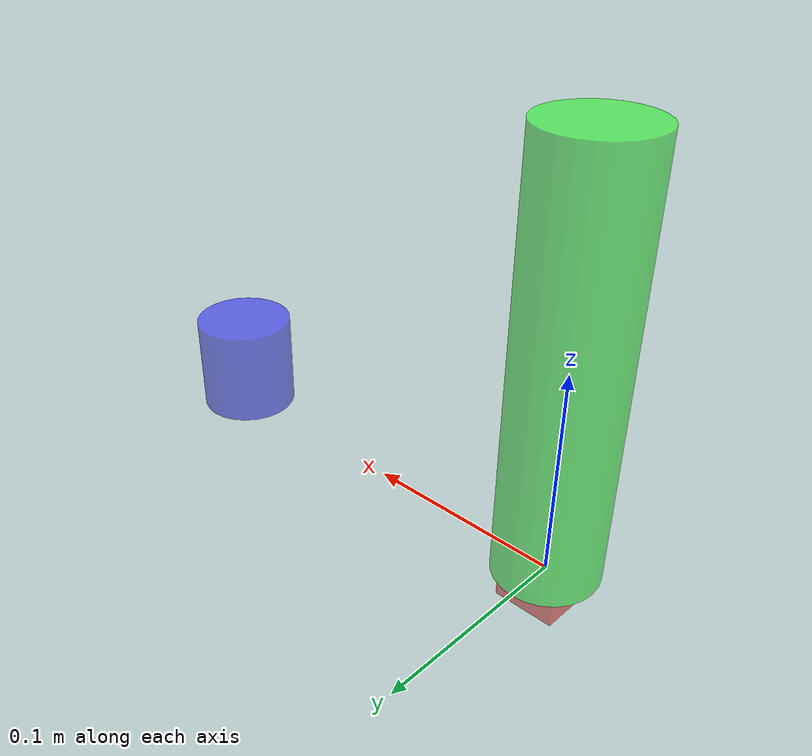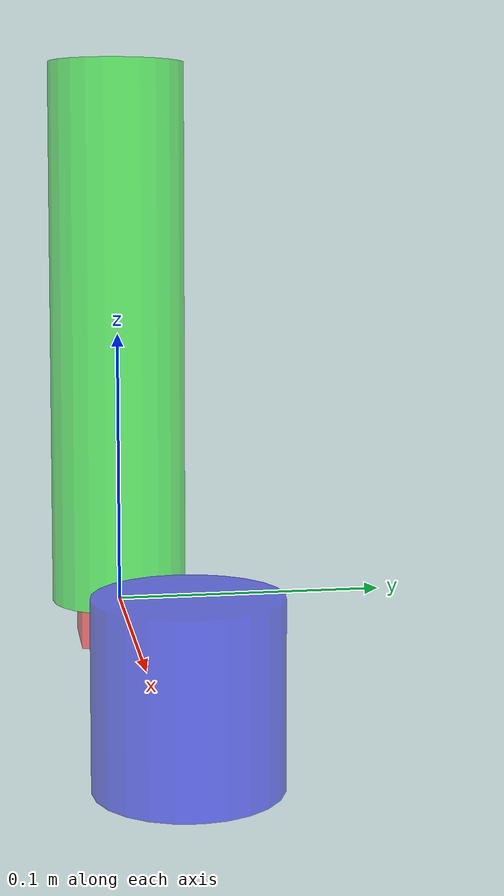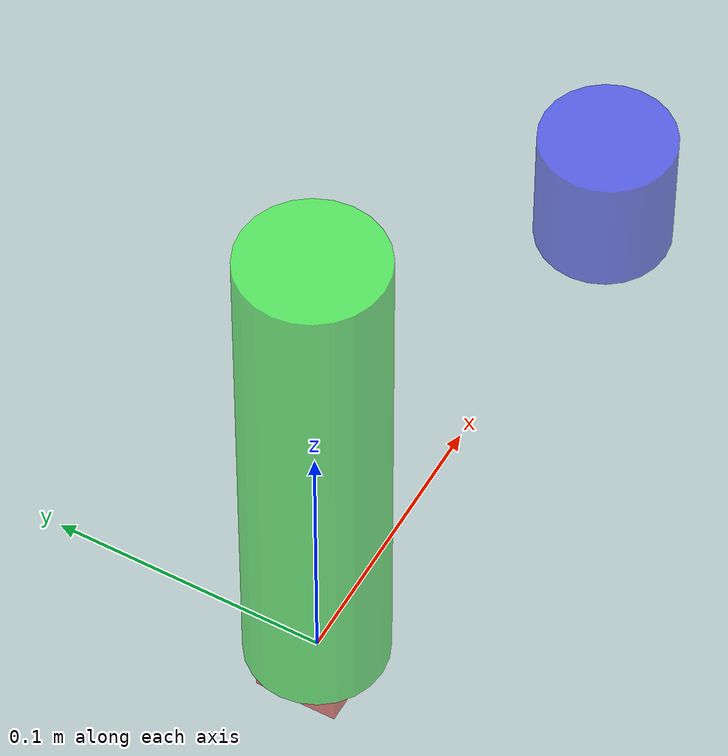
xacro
<?xml version="1.0"?>
<robot name="closed_chain_meachanism">
  <link name="world"/>
  <link name="square">
    <visual>
      <origin xyz="0.0 0.0 0.0" rpy="0.0 0.0 0.0"/>
    <geometry>
      <box size="0.03 0.03 0.03"/>
    </geometry>
    <material name ="red">
      <color rgba="1 0 0 0.5"/>
    </material>
    </visual>
  </link>
  <link name="ab">
    <visual>
    <origin xyz="0.0 0.0 0.1" rpy="0.0 0.0 0.0"/>
    <geometry>
      <cylinder radius="0.025" length="0.2"/>
    </geometry>
    <material name ="green">
      <color rgba="0 1 0 0.5"/>
    </material>
    </visual>
  </link>

  <link name="bo">
    <visual>
    <origin xyz="0.0 0.0 0.025" rpy="0.0 0.0 150"/>
    <geometry>
      <cylinder radius="0.025" length="0.05"/>
    </geometry>
    <material name ="blue">
      <color rgba="0 0 1 0.5"/>
    </material>
    </visual>
  </link>
  <joint name="virtual_joint" type="prismatic">
    <parent link="world"/>
    <child link="square"/>
    <origin xyz="0.0 0.0 0.0" rpy="0.0 0.0 0.0"/>
    <axis xyz="1 0.0 0.0"/>
    <limit lower="-0.1" upper="0.1" effort="1.0" velocity="0.05"/>
  </joint>
  <joint name="joint1" type="revolute">
    <parent link="square"/>
    <child link="ab"/>
    <origin xyz="0.0 0.0 0.0" rpy="0 0.0 0.0"/>
    <axis xyz="0.0 1.0 0.0"/>
    <limit lower="0" upper="1.57" effort="1.0" velocity="0.05"/>
  </joint>

  <joint name ="fixed_joint" type="fixed">
    <parent link="world"/>
    <child link="bo"/>
    <origin xyz="0.206155 0.0 0.0" rpy="0.0 0.0 -150"/>
  </joint>
</robot>
